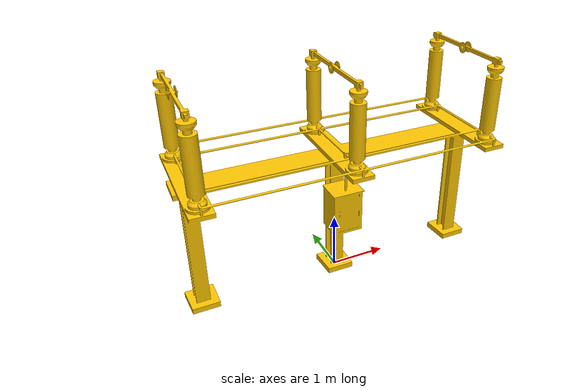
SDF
<?xml version="1.0" ?>
<sdf version="1.8">
  <model name="Electrical_Array_4">
    <static>true</static>
    <link name="link">
      <collision name="collision">
        <geometry>
          <mesh>
            <uri>model://Electrical_Array_4/Meshes/Electrical_Array_4.stl</uri>
            <scale>0.001 0.001 0.001</scale>
          </mesh>
        </geometry>
      </collision>

      <visual name="visual">
        <geometry>
          <mesh>
            <uri>model://Electrical_Array_4/Meshes/Electrical_Array_4.stl</uri>
            <scale>0.001 0.001 0.001</scale>
          </mesh>
        </geometry>
        <material>
          <diffuse>1.0 0.78 0.0 1.0</diffuse>
        </material>
      </visual>
    </link>
  </model>
</sdf>
